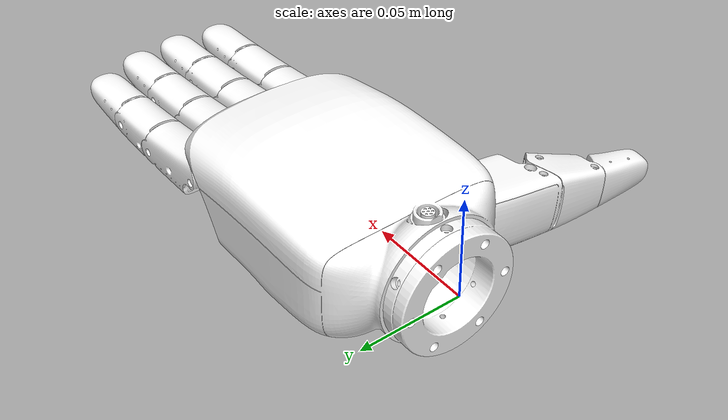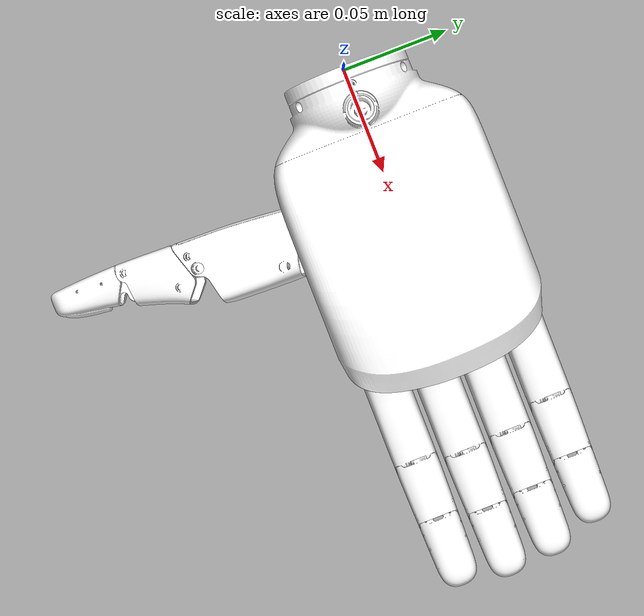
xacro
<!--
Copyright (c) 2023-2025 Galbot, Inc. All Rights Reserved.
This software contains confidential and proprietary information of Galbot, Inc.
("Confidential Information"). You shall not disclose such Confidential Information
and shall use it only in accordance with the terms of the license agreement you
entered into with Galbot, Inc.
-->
<?xml version="1.0"?>

<robot name="test_hand" xmlns:xacro="http://ros.org/wiki/xacro">
    <!-- Include-->
    <xacro:include filename="$(find galbot_one_charlie_description)/xacro/hand/galbot_hand2/galbot_left_hand2.xacro" />
    <!-- Properties -->
    <xacro:property name="M_PI" value="3.1415926535897931" />
    <!-- Parent link -->
    <link name="base_link" />
    <xacro:galbot_left_hand2 parent="base_link">
        <origin xyz="0 0 0" rpy="0 0 0" />
    </xacro:galbot_left_hand2>
</robot>

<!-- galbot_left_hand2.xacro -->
<robot xmlns:xacro="http://www.ros.org/wiki/xacro" name="galbot_left_hand2">
  <xacro:macro name="inertial_matrix" params="mass">
    <inertial>
      <mass value="${mass}"/>
      <inertia ixx="1.0" ixy="0.0" ixz="0.0" iyy="0.5" iyz="0.0" izz="1.0"/>
    </inertial>
  </xacro:macro>
  <xacro:macro name="Box_inertial_matrix" params="m l w h">
    <inertial>
      <mass value="${m}"/>
      <inertia ixx="${m*(h*h + l*l)/12}" ixy="0" ixz="0" iyy="${m*(w*w + l*l)/12}" iyz="0" izz="${m*(w*w + h*h)/12}"/>
    </inertial>
  </xacro:macro>
  <xacro:macro name="galbot_left_hand2" params="parent *origin name:=galbot_left_hand2">
    <xacro:property name="M_PI" value="3.1415926535897931"/>
    <xacro:property name="J2_LIMIT" value="1.38"/>

    <joint name="${name}_joint" type="fixed">
      <xacro:insert_block name="origin"/>
      <parent link="${parent}"/>
      <child link="${name}_base_link"/>
    </joint>
    <link name="${name}_base_link">
      <inertial>
        <origin xyz="0.00816960851936208 0.0636207065507103 -0.00018912841690469" rpy="0 0 0"/>
        <mass value="0.451358060978353"/>
        <inertia ixx="0.000498049990193903" ixy="3.29099036424034E-06" ixz="-9.01303519099725E-07" iyy="0.000253439658189704" iyz="2.93799411856234E-06" izz="0.000312927861798085"/>
      </inertial>
      <visual>
        <origin xyz="0 0 0" rpy="0 0 0"/>
        <geometry>
          <mesh filename="package://galbot_one_charlie_description/meshes/galbot_hand2/left_base_link.stl"/>
        </geometry>
        <material name="">
          <color rgba="1 1 1 1"/>
        </material>
      </visual>
      <collision>
        <origin xyz="0 0 0" rpy="0 0 0"/>
        <geometry>
          <mesh filename="package://galbot_one_charlie_description/meshes/galbot_hand2/left_base_link.stl"/>
        </geometry>
      </collision>
    </link>
    <link name="${name}_finger1_link1">
      <inertial>
        <origin xyz="0.00785832448435717 0.00132081849967757 0.00170040366418012" rpy="0 0 0"/>
        <mass value="0.00153891343724584"/>
        <inertia ixx="3.96940695067765E-08" ixy="-2.25605790919375E-09" ixz="-1.11534015358591E-08" iyy="7.00013902307812E-08" iyz="-6.31361887888073E-10" izz="5.73022005170989E-08"/>
      </inertial>
      <visual>
        <origin xyz="0 0 0" rpy="0 0 0"/>
        <geometry>
          <mesh filename="package://galbot_one_charlie_description/meshes/galbot_hand2/left_finger1_link1.stl"/>
        </geometry>
        <material name="">
          <color rgba="1 1 1 1"/>
        </material>
      </visual>
      <collision>
        <origin xyz="0 0 0" rpy="0 0 0"/>
        <geometry>
          <mesh filename="package://galbot_one_charlie_description/meshes/galbot_hand2/left_finger1_link1.stl"/>
        </geometry>
      </collision>
    </link>
    <joint name="${name}_finger1_joint1" type="revolute">
      <origin xyz="0.0555 -0.028 -0.017993" rpy="-1.5707963267949 0 -1.5707963267949"/>
      <parent link="${name}_base_link"/>
      <child link="${name}_finger1_link1"/>
      <axis xyz="0 0 1"/>
      <limit lower="0" upper="1.4454124" effort="10" velocity="1.5"/>
    </joint>
    <link name="${name}_finger1_link2">
      <inertial>
        <origin xyz="0.0296825612177022 0.00637937878751394 -8.43605438977102E-10" rpy="0 0 0"/>
        <mass value="0.00724797536837754"/>
        <inertia ixx="4.72588057392771E-07" ixy="7.05435365244983E-08" ixz="-1.09120906427536E-13" iyy="1.35886054864431E-06" iyz="1.21486244887893E-13" izz="1.81818536529581E-06"/>
      </inertial>
      <visual>
        <origin xyz="0 0 0" rpy="0 0 0"/>
        <geometry>
          <mesh filename="package://galbot_one_charlie_description/meshes/galbot_hand2/left_finger1_link2.stl"/>
        </geometry>
        <material name="">
          <color rgba="1 1 1 1"/>
        </material>
      </visual>
      <collision>
        <origin xyz="0 0 0" rpy="0 0 0"/>
        <geometry>
          <mesh filename="package://galbot_one_charlie_description/meshes/galbot_hand2/left_finger1_link2.stl"/>
        </geometry>
      </collision>
    </link>
    <joint name="${name}_finger1_joint2" type="revolute">
      <origin xyz="0.014916 0.0090836 -0.0007" rpy="1.5708 0 0.13459"/>
      <parent link="${name}_finger1_link1"/>
      <child link="${name}_finger1_link2"/>
      <axis xyz="0 0 1"/>
      <limit lower="0" upper="1.1961649" effort="10" velocity="1.5"/>
    </joint>
    <link name="${name}_finger1_link3">
      <inertial>
        <origin xyz="0.0171434284036376 -0.00150490214088548 -4.44054506498759E-08" rpy="0 0 0"/>
        <mass value="0.00474795122263958"/>
        <inertia ixx="2.72339609508888E-07" ixy="9.31861245911121E-08" ixz="-2.34651651392827E-13" iyy="3.73288445610006E-07" iyz="2.45287512165448E-13" izz="6.22247088985726E-07"/>
      </inertial>
      <visual>
        <origin xyz="0 0 0" rpy="0 0 0"/>
        <geometry>
          <mesh filename="package://galbot_one_charlie_description/meshes/galbot_hand2/left_finger1_link3.stl"/>
        </geometry>
        <material name="">
          <color rgba="1 1 1 1"/>
        </material>
      </visual>
      <collision>
        <origin xyz="0 0 0" rpy="0 0 0"/>
        <geometry>
          <mesh filename="package://galbot_one_charlie_description/meshes/galbot_hand2/left_finger1_link3.stl"/>
        </geometry>
      </collision>
    </link>
    <joint name="${name}_finger1_joint3" type="revolute">
      <origin xyz="0.050801 0.0048501 0" rpy="0 0 0"/>
      <parent link="${name}_finger1_link2"/>
      <child link="${name}_finger1_link3"/>
      <axis xyz="0 0 1"/>
      <limit lower="0" upper="0.9287205" effort="10" velocity="1.5"/>
    </joint>
    <link name="${name}_finger1_link4">
      <inertial>
        <origin xyz="0.0154993840945061 0.00400208159023535 2.97257485136482E-06" rpy="0 0 0"/>
        <mass value="0.00507768871509372"/>
        <inertia ixx="1.26734739246418E-07" ixy="5.68383791569981E-08" ixz="-7.39145180973407E-11" iyy="4.08272374697105E-07" iyz="2.9467226627009E-11" izz="3.49536217441572E-07"/>
      </inertial>
      <visual>
        <origin xyz="0 0 0" rpy="0 0 0"/>
        <geometry>
          <mesh filename="package://galbot_one_charlie_description/meshes/galbot_hand2/left_finger1_link4.stl"/>
        </geometry>
        <material name="">
          <color rgba="1 1 1 1"/>
        </material>
      </visual>
      <collision>
        <origin xyz="0 0 0" rpy="0 0 0"/>
        <geometry>
          <mesh filename="package://galbot_one_charlie_description/meshes/galbot_hand2/left_finger1_link4.stl"/>
        </geometry>
      </collision>
    </link>
    <joint name="${name}_finger1_joint4" type="revolute">
      <origin xyz="0.033461 -0.010517 0" rpy="0 0 0"/>
      <parent link="${name}_finger1_link3"/>
      <child link="${name}_finger1_link4"/>
      <axis xyz="0 0 1"/>
      <limit lower="0" upper="0.5928541" effort="10" velocity="1.5"/>
    </joint>
    <link name="${name}_finger1_end_effector_link"/>
    <joint name="${name}_finger1_end_effector_joint" type="fixed">
      <origin xyz="0.0238977384221158 0.0122047665173845 0" rpy="0 0 -0.166296781966088"/>
      <parent link="${name}_finger1_link4"/>
      <child link="${name}_finger1_end_effector_link"/>
      <axis xyz="0 0 0"/>
    </joint>
    <link name="${name}_finger2_link1">
      <inertial>
        <origin xyz="0.00382575221148437 -5.00520139917748E-09 -0.00379970728509158" rpy="0 0 0"/>
        <mass value="0.000889473582525137"/>
        <inertia ixx="4.0055788387694E-08" ixy="-1.56454747029463E-14" ixz="-4.38944911232404E-09" iyy="4.42763145564234E-08" iyz="-1.56506551122916E-14" izz="1.19540185771033E-08"/>
      </inertial>
      <visual>
        <origin xyz="0 0 0" rpy="0 0 0"/>
        <geometry>
          <mesh filename="package://galbot_one_charlie_description/meshes/galbot_hand2/left_finger2_link1.stl"/>
        </geometry>
        <material name="">
          <color rgba="1 1 1 1"/>
        </material>
      </visual>
      <collision>
        <origin xyz="0 0 0" rpy="0 0 0"/>
        <geometry>
          <mesh filename="package://galbot_one_charlie_description/meshes/galbot_hand2/left_finger2_link1.stl"/>
        </geometry>
      </collision>
    </link>
    <joint name="${name}_finger2_joint1" type="revolute">
      <origin xyz="0.1333 -0.0339 -0.0010932" rpy="3.14159265358979 0 0"/>
      <parent link="${name}_base_link"/>
      <child link="${name}_finger2_link1"/>
      <axis xyz="0 0 1"/>
      <limit lower="-0.34906585" upper="0.34906585" effort="10" velocity="1.5"/>
    </joint>
    <link name="${name}_finger2_link2">
      <inertial>
        <origin xyz="0.0199166121070695 0.00452784516743032 -0.000303877808472956" rpy="0 0 0"/>
        <mass value="0.00346834967811122"/>
        <inertia ixx="7.47882545674864E-08" ixy="-6.37999082906082E-08" ixz="-8.29444375307042E-09" iyy="6.28681619362614E-07" iyz="-4.51118940783156E-10" izz="6.89244310692081E-07"/>
      </inertial>
      <visual>
        <origin xyz="0 0 0" rpy="0 0 0"/>
        <geometry>
          <mesh filename="package://galbot_one_charlie_description/meshes/galbot_hand2/left_finger2_link2.stl"/>
        </geometry>
        <material name="">
          <color rgba="1 1 1 1"/>
        </material>
      </visual>
      <collision>
        <origin xyz="0 0 0" rpy="0 0 0"/>
        <geometry>
          <mesh filename="package://galbot_one_charlie_description/meshes/galbot_hand2/left_finger2_link2.stl"/>
        </geometry>
      </collision>
    </link>
    <joint name="${name}_finger2_joint2" type="revolute">
      <origin xyz="0.00510000000000004 0 0.00439999999999952" rpy="1.5707963267949 0 0"/>
      <parent link="${name}_finger2_link1"/>
      <child link="${name}_finger2_link2"/>
      <axis xyz="0 0 1"/>
      <limit lower="0" upper="${J2_LIMIT}" effort="10" velocity="1.5"/>
    </joint>
    <link name="${name}_finger2_link3">
      <inertial>
        <origin xyz="0.0131841948791408 0.000998392629336252 -4.43775828881388E-05" rpy="0 0 0"/>
        <mass value="0.00240330669142529"/>
        <inertia ixx="9.21336766793984E-08" ixy="-6.73938389627133E-09" ixz="9.17491834587275E-09" iyy="2.61350743499042E-07" iyz="3.14135392902408E-09" izz="2.21858731660143E-07"/>
      </inertial>
      <visual>
        <origin xyz="0 0 0" rpy="0 0 0"/>
        <geometry>
          <mesh filename="package://galbot_one_charlie_description/meshes/galbot_hand2/left_finger2_link3.stl"/>
        </geometry>
        <material name="">
          <color rgba="1 1 1 1"/>
        </material>
      </visual>
      <collision>
        <origin xyz="0 0 0" rpy="0 0 0"/>
        <geometry>
          <mesh filename="package://galbot_one_charlie_description/meshes/galbot_hand2/left_finger2_link3.stl"/>
        </geometry>
      </collision>
    </link>
    <joint name="${name}_finger2_joint3" type="revolute">
      <origin xyz="0.0377 0.0057104 0" rpy="0 0 0"/>
      <parent link="${name}_finger2_link2"/>
      <child link="${name}_finger2_link3"/>
      <axis xyz="0 0 1"/>
      <limit lower="0" upper="${1.021*J2_LIMIT}" effort="10" velocity="1.5"/>
    </joint>
    <link name="${name}_finger2_link4">
      <inertial>
        <origin xyz="0.0164013380865539 -0.000465187190866665 2.14248312125492E-06" rpy="0 0 0"/>
        <mass value="0.00413805450374486"/>
        <inertia ixx="1.20869219589551E-07" ixy="4.29725372551635E-08" ixz="8.81359189277686E-10" iyy="3.17049521027888E-07" iyz="-4.42801512142467E-10" izz="2.55560236671056E-07"/>
      </inertial>
      <visual>
        <origin xyz="0 0 0" rpy="0 0 0"/>
        <geometry>
          <mesh filename="package://galbot_one_charlie_description/meshes/galbot_hand2/left_finger2_link4.stl"/>
        </geometry>
        <material name="">
          <color rgba="1 1 1 1"/>
        </material>
      </visual>
      <collision>
        <origin xyz="0 0 0" rpy="0 0 0"/>
        <geometry>
          <mesh filename="package://galbot_one_charlie_description/meshes/galbot_hand2/left_finger2_link4.stl"/>
        </geometry>
      </collision>
    </link>
    <joint name="${name}_finger2_joint4" type="revolute">
      <origin xyz="0.0265 0 0" rpy="0 0 0"/>
      <parent link="${name}_finger2_link3"/>
      <child link="${name}_finger2_link4"/>
      <axis xyz="0 0 1"/>
      <limit lower="0" upper="${0.857*1.021*J2_LIMIT}" effort="10" velocity="1.5"/>
    </joint>
    <link name="${name}_finger2_end_effector_link"/>
    <joint name="${name}_finger2_end_effector_joint" type="fixed">
      <origin xyz="0.021611 0.0063638 0" rpy="0 0 -0.12217"/>
      <parent link="${name}_finger2_link4"/>
      <child link="${name}_finger2_end_effector_link"/>
      <axis xyz="0 0 0"/>
    </joint>
    <link name="${name}_finger3_link1">
      <inertial>
        <origin xyz="0.00382575221148432 -5.00520138183025E-09 -0.00379970728509156" rpy="0 0 0"/>
        <mass value="0.000889473582525136"/>
        <inertia ixx="4.0055788387694E-08" ixy="-1.56454747080736E-14" ixz="-4.389449112324E-09" iyy="4.42763145564233E-08" iyz="-1.56506551211202E-14" izz="1.19540185771033E-08"/>
      </inertial>
      <visual>
        <origin xyz="0 0 0" rpy="0 0 0"/>
        <geometry>
          <mesh filename="package://galbot_one_charlie_description/meshes/galbot_hand2/left_finger3_link1.stl"/>
        </geometry>
        <material name="">
          <color rgba="1 1 1 1"/>
        </material>
      </visual>
      <collision>
        <origin xyz="0 0 0" rpy="0 0 0"/>
        <geometry>
          <mesh filename="package://galbot_one_charlie_description/meshes/galbot_hand2/left_finger3_link1.stl"/>
        </geometry>
      </collision>
    </link>
    <joint name="${name}_finger3_joint1" type="revolute">
      <origin xyz="0.1373 -0.0113 -0.0010932" rpy="3.14159265358979 0 0"/>
      <parent link="${name}_base_link"/>
      <child link="${name}_finger3_link1"/>
      <axis xyz="0 0 1"/>
      <limit lower="-0.34906585" upper="0.34906585" effort="10" velocity="1.5"/>
    </joint>
    <link name="${name}_finger3_link2">
      <inertial>
        <origin xyz="0.0199166121070695 0.00452784516743032 -0.000303877808472984" rpy="0 0 0"/>
        <mass value="0.00346834967811122"/>
        <inertia ixx="7.47882545674384E-08" ixy="-6.37999082906082E-08" ixz="-8.2944437530704E-09" iyy="6.28681619362615E-07" iyz="-4.51118940783142E-10" izz="6.89244310692035E-07"/>
      </inertial>
      <visual>
        <origin xyz="0 0 0" rpy="0 0 0"/>
        <geometry>
          <mesh filename="package://galbot_one_charlie_description/meshes/galbot_hand2/left_finger3_link2.stl"/>
        </geometry>
        <material name="">
          <color rgba="1 1 1 1"/>
        </material>
      </visual>
      <collision>
        <origin xyz="0 0 0" rpy="0 0 0"/>
        <geometry>
          <mesh filename="package://galbot_one_charlie_description/meshes/galbot_hand2/left_finger3_link2.stl"/>
        </geometry>
      </collision>
    </link>
    <joint name="${name}_finger3_joint2" type="revolute">
      <origin xyz="0.00509999999999999 0 0.00439999999999953" rpy="1.5707963267949 0 0"/>
      <parent link="${name}_finger3_link1"/>
      <child link="${name}_finger3_link2"/>
      <axis xyz="0 0 1"/>
      <limit lower="0" upper="${J2_LIMIT}" effort="10" velocity="1.5"/>
    </joint>
    <link name="${name}_finger3_link3">
      <inertial>
        <origin xyz="0.0131841948791408 0.000998392629336248 -4.43775828881717E-05" rpy="0 0 0"/>
        <mass value="0.00240330669142529"/>
        <inertia ixx="9.21336766793984E-08" ixy="-6.73938389627187E-09" ixz="9.17491834587279E-09" iyy="2.61350743499041E-07" iyz="3.14135392902406E-09" izz="2.21858731660142E-07"/>
      </inertial>
      <visual>
        <origin xyz="0 0 0" rpy="0 0 0"/>
        <geometry>
          <mesh filename="package://galbot_one_charlie_description/meshes/galbot_hand2/left_finger3_link3.stl"/>
        </geometry>
        <material name="">
          <color rgba="1 1 1 1"/>
        </material>
      </visual>
      <collision>
        <origin xyz="0 0 0" rpy="0 0 0"/>
        <geometry>
          <mesh filename="package://galbot_one_charlie_description/meshes/galbot_hand2/left_finger3_link3.stl"/>
        </geometry>
      </collision>
    </link>
    <joint name="${name}_finger3_joint3" type="revolute">
      <origin xyz="0.0376999618833714 0.00571036952345733 0" rpy="0 0 0"/>
      <parent link="${name}_finger3_link2"/>
      <child link="${name}_finger3_link3"/>
      <axis xyz="0 0 1"/>
      <limit lower="0" upper="${1.021*J2_LIMIT}" effort="10" velocity="1.5"/>
    </joint>
    <link name="${name}_finger3_link4">
      <inertial>
        <origin xyz="0.016401338086554 -0.00046518719086669 2.14248312120288E-06" rpy="0 0 0"/>
        <mass value="0.00413805450374489"/>
        <inertia ixx="1.20869219589554E-07" ixy="4.29725372551654E-08" ixz="8.81359189278112E-10" iyy="3.1704952102789E-07" iyz="-4.42801512142491E-10" izz="2.5556023667106E-07"/>
      </inertial>
      <visual>
        <origin xyz="0 0 0" rpy="0 0 0"/>
        <geometry>
          <mesh filename="package://galbot_one_charlie_description/meshes/galbot_hand2/left_finger3_link4.stl"/>
        </geometry>
        <material name="">
          <color rgba="1 1 1 1"/>
        </material>
      </visual>
      <collision>
        <origin xyz="0 0 0" rpy="0 0 0"/>
        <geometry>
          <mesh filename="package://galbot_one_charlie_description/meshes/galbot_hand2/left_finger3_link4.stl"/>
        </geometry>
      </collision>
    </link>
    <joint name="${name}_finger3_joint4" type="revolute">
      <origin xyz="0.0265 0 0" rpy="0 0 0"/>
      <parent link="${name}_finger3_link3"/>
      <child link="${name}_finger3_link4"/>
      <axis xyz="0 0 1"/>
      <limit lower="0" upper="${0.857*1.021*J2_LIMIT}" effort="10" velocity="1.5"/>
    </joint>
    <link name="${name}_finger3_end_effector_link"/>
    <joint name="${name}_finger3_end_effector_joint" type="fixed">
      <origin xyz="0.021610626928784 0.00636376159979386 0" rpy="0 0 -0.122173047637935"/>
      <parent link="${name}_finger3_link4"/>
      <child link="${name}_finger3_end_effector_link"/>
      <axis xyz="0 0 0"/>
    </joint>
    <link name="${name}_finger4_link1">
      <inertial>
        <origin xyz="0.0038257522114842 -5.00520198898347E-09 -0.00379970728509157" rpy="0 0 0"/>
        <mass value="0.000889473582525138"/>
        <inertia ixx="4.0055788387694E-08" ixy="-1.56454747150249E-14" ixz="-4.38944911232402E-09" iyy="4.42763145564234E-08" iyz="-1.5650655132107E-14" izz="1.19540185771033E-08"/>
      </inertial>
      <visual>
        <origin xyz="0 0 0" rpy="0 0 0"/>
        <geometry>
          <mesh filename="package://galbot_one_charlie_description/meshes/galbot_hand2/left_finger4_link1.stl"/>
        </geometry>
        <material name="">
          <color rgba="1 1 1 1"/>
        </material>
      </visual>
      <collision>
        <origin xyz="0 0 0" rpy="0 0 0"/>
        <geometry>
          <mesh filename="package://galbot_one_charlie_description/meshes/galbot_hand2/left_finger4_link1.stl"/>
        </geometry>
      </collision>
    </link>
    <joint name="${name}_finger4_joint1" type="revolute">
      <origin xyz="0.1358 0.0113 -0.0010932" rpy="3.14159265358979 0 0"/>
      <parent link="${name}_base_link"/>
      <child link="${name}_finger4_link1"/>
      <axis xyz="0 0 1"/>
      <limit lower="-0.34906585" upper="0.34906585" effort="10" velocity="1.5"/>
    </joint>
    <link name="${name}_finger4_link2">
      <inertial>
        <origin xyz="0.0199166121070696 0.00452784516743035 -0.000303877808472375" rpy="0 0 0"/>
        <mass value="0.00346834967811123"/>
        <inertia ixx="7.47882545673969E-08" ixy="-6.37999082906091E-08" ixz="-8.29444375307024E-09" iyy="6.28681619362616E-07" iyz="-4.5111894078301E-10" izz="6.89244310691995E-07"/>
      </inertial>
      <visual>
        <origin xyz="0 0 0" rpy="0 0 0"/>
        <geometry>
          <mesh filename="package://galbot_one_charlie_description/meshes/galbot_hand2/left_finger4_link2.stl"/>
        </geometry>
        <material name="">
          <color rgba="1 1 1 1"/>
        </material>
      </visual>
      <collision>
        <origin xyz="0 0 0" rpy="0 0 0"/>
        <geometry>
          <mesh filename="package://galbot_one_charlie_description/meshes/galbot_hand2/left_finger4_link2.stl"/>
        </geometry>
      </collision>
    </link>
    <joint name="${name}_finger4_joint2" type="revolute">
      <origin xyz="0.00509999999999987 0 0.00439999999999953" rpy="1.5707963267949 0 0"/>
      <parent link="${name}_finger4_link1"/>
      <child link="${name}_finger4_link2"/>
      <axis xyz="0 0 1"/>
      <limit lower="0" upper="${J2_LIMIT}" effort="10" velocity="1.5"/>
    </joint>
    <link name="${name}_finger4_link3">
      <inertial>
        <origin xyz="0.0131841948791408 0.000998392629336248 -4.43775828875594E-05" rpy="0 0 0"/>
        <mass value="0.00240330669142529"/>
        <inertia ixx="9.21336766794008E-08" ixy="-6.73938389627169E-09" ixz="9.17491834587288E-09" iyy="2.61350743499041E-07" iyz="3.14135392902408E-09" izz="2.21858731660145E-07"/>
      </inertial>
      <visual>
        <origin xyz="0 0 0" rpy="0 0 0"/>
        <geometry>
          <mesh filename="package://galbot_one_charlie_description/meshes/galbot_hand2/left_finger4_link3.stl"/>
        </geometry>
        <material name="">
          <color rgba="1 1 1 1"/>
        </material>
      </visual>
      <collision>
        <origin xyz="0 0 0" rpy="0 0 0"/>
        <geometry>
          <mesh filename="package://galbot_one_charlie_description/meshes/galbot_hand2/left_finger4_link3.stl"/>
        </geometry>
      </collision>
    </link>
    <joint name="${name}_finger4_joint3" type="revolute">
      <origin xyz="0.0376999618833714 0.00571036952345734 0" rpy="0 0 0"/>
      <parent link="${name}_finger4_link2"/>
      <child link="${name}_finger4_link3"/>
      <axis xyz="0 0 1"/>
      <limit lower="0" upper="${1.021*J2_LIMIT}" effort="10" velocity="1.5"/>
    </joint>
    <link name="${name}_finger4_link4">
      <inertial>
        <origin xyz="0.016401338086554 -0.000465187190866685 2.14248312181697E-06" rpy="0 0 0"/>
        <mass value="0.0041380545037449"/>
        <inertia ixx="1.20869219589552E-07" ixy="4.29725372551645E-08" ixz="8.81359189278016E-10" iyy="3.17049521027891E-07" iyz="-4.4280151214266E-10" izz="2.55560236671059E-07"/>
      </inertial>
      <visual>
        <origin xyz="0 0 0" rpy="0 0 0"/>
        <geometry>
          <mesh filename="package://galbot_one_charlie_description/meshes/galbot_hand2/left_finger4_link4.stl"/>
        </geometry>
        <material name="">
          <color rgba="1 1 1 1"/>
        </material>
      </visual>
      <collision>
        <origin xyz="0 0 0" rpy="0 0 0"/>
        <geometry>
          <mesh filename="package://galbot_one_charlie_description/meshes/galbot_hand2/left_finger4_link4.stl"/>
        </geometry>
      </collision>
    </link>
    <joint name="${name}_finger4_joint4" type="revolute">
      <origin xyz="0.0265 0 0" rpy="0 0 0"/>
      <parent link="${name}_finger4_link3"/>
      <child link="${name}_finger4_link4"/>
      <axis xyz="0 0 1"/>
      <limit lower="0" upper="${0.857*1.021*J2_LIMIT}" effort="10" velocity="1.5"/>
    </joint>
    <link name="${name}_finger4_end_effector_link"/>
    <joint name="${name}_finger4_end_effector_joint" type="fixed">
      <origin xyz="0.0216106269287837 0.00636376159979139 0" rpy="0 0 -0.12217304763799"/>
      <parent link="${name}_finger4_link4"/>
      <child link="${name}_finger4_end_effector_link"/>
      <axis xyz="0 0 0"/>
    </joint>
    <link name="${name}_finger5_link1">
      <inertial>
        <origin xyz="0.00382575221148435 -5.0052013852997E-09 -0.00379970728509157" rpy="0 0 0"/>
        <mass value="0.000889473582525137"/>
        <inertia ixx="4.0055788387694E-08" ixy="-1.56454747077866E-14" ixz="-4.38944911232402E-09" iyy="4.42763145564234E-08" iyz="-1.56506551217156E-14" izz="1.19540185771033E-08"/>
      </inertial>
      <visual>
        <origin xyz="0 0 0" rpy="0 0 0"/>
        <geometry>
          <mesh filename="package://galbot_one_charlie_description/meshes/galbot_hand2/left_finger5_link1.stl"/>
        </geometry>
        <material name="">
          <color rgba="1 1 1 1"/>
        </material>
      </visual>
      <collision>
        <origin xyz="0 0 0" rpy="0 0 0"/>
        <geometry>
          <mesh filename="package://galbot_one_charlie_description/meshes/galbot_hand2/left_finger5_link1.stl"/>
        </geometry>
      </collision>
    </link>
    <joint name="${name}_finger5_joint1" type="revolute">
      <origin xyz="0.1283 0.0339 -0.00109315386890014" rpy="3.14159265358979 0 0"/>
      <parent link="${name}_base_link"/>
      <child link="${name}_finger5_link1"/>
      <axis xyz="0 0 1"/>
      <limit lower="-0.34906585" upper="0.34906585" effort="10" velocity="1.5"/>
    </joint>
    <link name="${name}_finger5_link2">
      <inertial>
        <origin xyz="0.0199166121070694 0.00452784516743028 -0.000303877808472977" rpy="0 0 0"/>
        <mass value="0.00346834967811122"/>
        <inertia ixx="7.47882545674794E-08" ixy="-6.37999082906374E-08" ixz="-8.29444375306924E-09" iyy="6.28681619362609E-07" iyz="-4.51118940783156E-10" izz="6.89244310692069E-07"/>
      </inertial>
      <visual>
        <origin xyz="0 0 0" rpy="0 0 0"/>
        <geometry>
          <mesh filename="package://galbot_one_charlie_description/meshes/galbot_hand2/left_finger5_link2.stl"/>
        </geometry>
        <material name="">
          <color rgba="1 1 1 1"/>
        </material>
      </visual>
      <collision>
        <origin xyz="0 0 0" rpy="0 0 0"/>
        <geometry>
          <mesh filename="package://galbot_one_charlie_description/meshes/galbot_hand2/left_finger5_link2.stl"/>
        </geometry>
      </collision>
    </link>
    <joint name="${name}_finger5_joint2" type="revolute">
      <origin xyz="0.00510000000000001 0 0.00439999999999954" rpy="1.5707963267949 0 0"/>
      <parent link="${name}_finger5_link1"/>
      <child link="${name}_finger5_link2"/>
      <axis xyz="0 0 1"/>
      <limit lower="0" upper="${J2_LIMIT}" effort="10" velocity="1.5"/>
    </joint>
    <link name="${name}_finger5_link3">
      <inertial>
        <origin xyz="0.0131841948791408 0.000998392629336242 -4.43775828881596E-05" rpy="0 0 0"/>
        <mass value="0.00240330669142529"/>
        <inertia ixx="9.21336766793996E-08" ixy="-6.73938389627189E-09" ixz="9.17491834587282E-09" iyy="2.61350743499041E-07" iyz="3.14135392902401E-09" izz="2.21858731660144E-07"/>
      </inertial>
      <visual>
        <origin xyz="0 0 0" rpy="0 0 0"/>
        <geometry>
          <mesh filename="package://galbot_one_charlie_description/meshes/galbot_hand2/left_finger5_link3.stl"/>
        </geometry>
        <material name="">
          <color rgba="1 1 1 1"/>
        </material>
      </visual>
      <collision>
        <origin xyz="0 0 0" rpy="0 0 0"/>
        <geometry>
          <mesh filename="package://galbot_one_charlie_description/meshes/galbot_hand2/left_finger5_link3.stl"/>
        </geometry>
      </collision>
    </link>
    <joint name="${name}_finger5_joint3" type="revolute">
      <origin xyz="0.0376999618833714 0.00571036952345732 0" rpy="0 0 0"/>
      <parent link="${name}_finger5_link2"/>
      <child link="${name}_finger5_link3"/>
      <axis xyz="0 0 1"/>
      <limit lower="0" upper="${1.021*J2_LIMIT}" effort="10" velocity="1.5"/>
    </joint>
    <link name="${name}_finger5_link4">
      <inertial>
        <origin xyz="0.0164013380865539 -0.000465187190866682 2.14248312121329E-06" rpy="0 0 0"/>
        <mass value="0.00413805450374486"/>
        <inertia ixx="1.20869219589534E-07" ixy="4.29725372551636E-08" ixz="8.81359189277391E-10" iyy="3.1704952102789E-07" iyz="-4.42801512142424E-10" izz="2.55560236671042E-07"/>
      </inertial>
      <visual>
        <origin xyz="0 0 0" rpy="0 0 0"/>
        <geometry>
          <mesh filename="package://galbot_one_charlie_description/meshes/galbot_hand2/left_finger5_link4.stl"/>
        </geometry>
        <material name="">
          <color rgba="1 1 1 1"/>
        </material>
      </visual>
      <collision>
        <origin xyz="0 0 0" rpy="0 0 0"/>
        <geometry>
          <mesh filename="package://galbot_one_charlie_description/meshes/galbot_hand2/left_finger5_link4.stl"/>
        </geometry>
      </collision>
    </link>
    <joint name="${name}_finger5_joint4" type="revolute">
      <origin xyz="0.0265 0 0" rpy="0 0 0"/>
      <parent link="${name}_finger5_link3"/>
      <child link="${name}_finger5_link4"/>
      <axis xyz="0 0 1"/>
      <limit lower="0" upper="${0.857*1.021*J2_LIMIT}" effort="10" velocity="1.5"/>
    </joint>
    <link name="${name}_finger5_end_effector_link"/>
    <joint name="${name}_finger5_end_effector_joint" type="fixed">
      <origin xyz="0.0216106269287822 0.00636376159977905 0" rpy="0 0 -0.12217304763799"/>
      <parent link="${name}_finger5_link4"/>
      <child link="${name}_finger5_end_effector_link"/>
      <axis xyz="0 0 0"/>
    </joint>

  </xacro:macro>
</robot>
